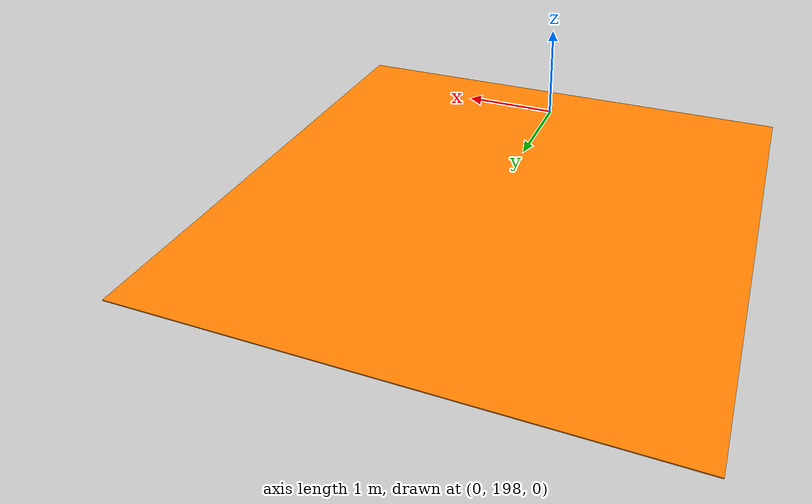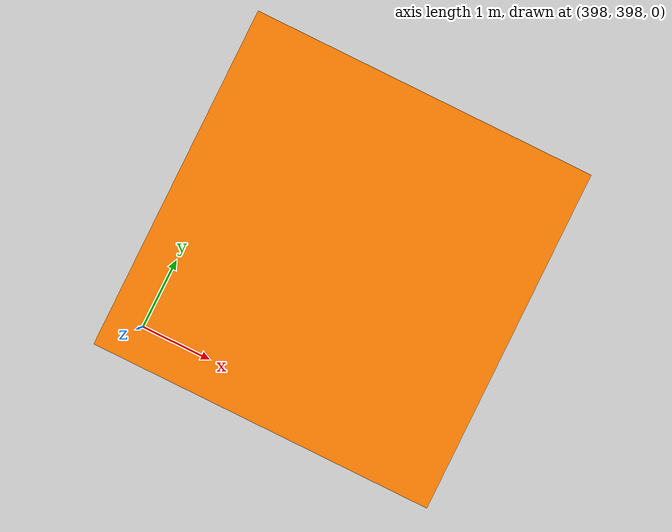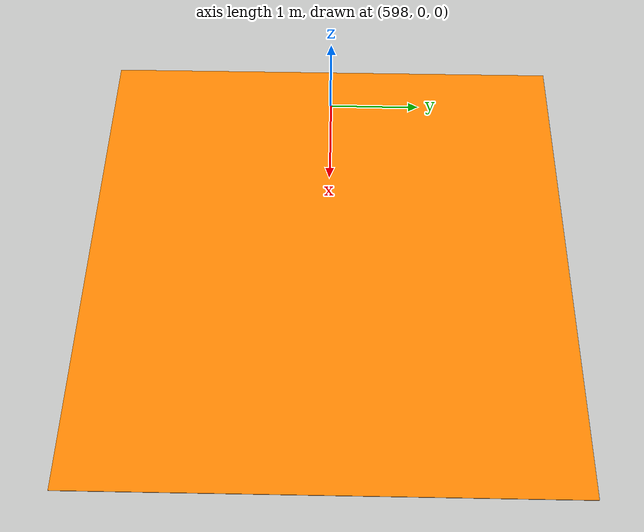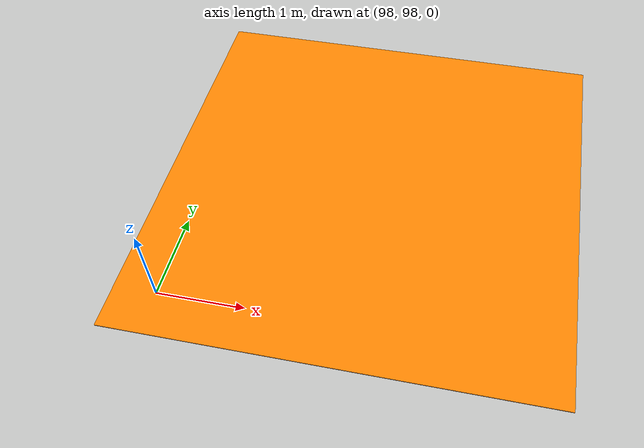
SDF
<sdf version="1.9">
 <world name="alti_transition_runway">
  <plugin filename="gz-sim-physics-system" name="gz::sim::systems::Physics"/>
  <plugin filename="gz-sim-sensors-system" name="gz::sim::systems::Sensors">
   <render_engine>ogre2</render_engine>
  </plugin>
  <plugin filename="gz-sim-user-commands-system" name="gz::sim::systems::UserCommands"/>
  <plugin filename="gz-sim-scene-broadcaster-system" name="gz::sim::systems::SceneBroadcaster"/>
  <plugin filename="gz-sim-imu-system" name="gz::sim::systems::Imu"/>
  <plugin filename="gz-sim-navsat-system" name="gz::sim::systems::NavSat"/>
  <scene><ambient>1.0 1.0 1.0</ambient><background>0.8 0.8 0.8</background></scene>
  <light type="directional" name="sun">
   <pose>0 0 10 0 0 0</pose>
   <diffuse>0.8 0.8 0.8 1</diffuse>
   <specular>0.8 0.8 0.8 1</specular>
   <attenuation>
    <range>1000</range>
    <constant>0.9</constant>
    <linear>0.01</linear>
    <quadratic>0.001</quadratic>
   </attenuation>
   <direction>-0.5 0.1 -0.9</direction>
  </light>
  <include><uri>model://orange_tarp_target</uri><name>dz_1</name><pose>400.0 400.0 0.0 0 0 0</pose></include>
  <include><uri>model://orange_tarp_target</uri><name>dz_2</name><pose>600.0 0.0 0.0 0 0 0</pose></include>
  <include>
   <uri>model://orange_tarp_target</uri>
   <name>random_orange_tarp_1</name>
   <pose>100.0 100.0 0.0 0 0 0</pose>
  </include>
  <include>
   <uri>model://orange_tarp_target</uri>
   <name>random_orange_tarp_2</name>
   <pose>0.0 200.0 0.0 0 0 0</pose>
  </include>
 </world>
</sdf>

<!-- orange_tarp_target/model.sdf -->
<sdf version="1.9">
  <model name="orange_tarp_target">
    <static>true</static>

    <link name="tarp_base">
      <collision name="collision">
        <geometry>
          <box>
            <size>5.0 5.0 0.01</size>
          </box>
        </geometry>
      </collision>

      <visual name="visual">
        <geometry>
          <box>
            <size>5.0 5.0 0.01</size>
          </box>
        </geometry>
        <material>
          <ambient>1.0 0.5 0.0 1.0</ambient>
          <diffuse>1.0 0.5 0.0 1.0</diffuse>
          <specular>0.1 0.1 0.1 1.0</specular>
        </material>
      </visual>
    </link>
  </model>
</sdf>
